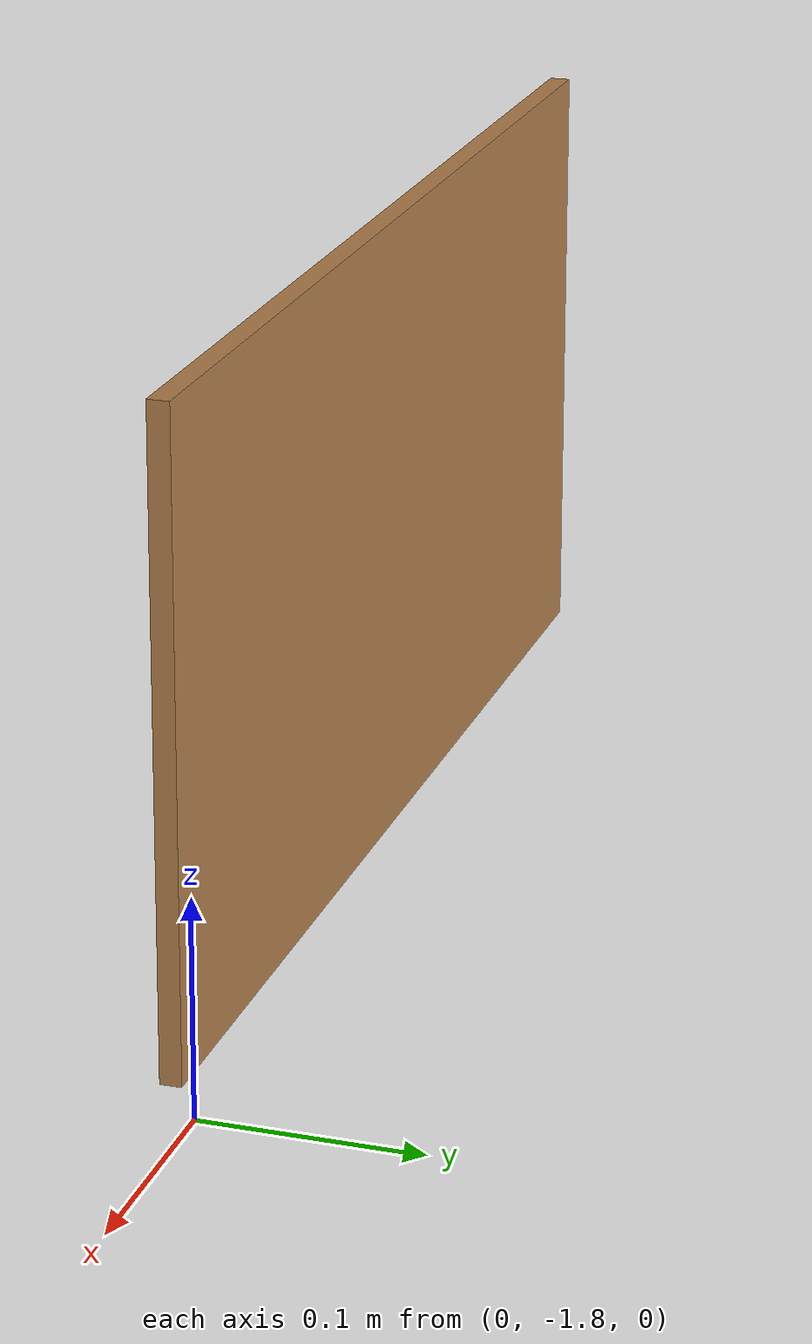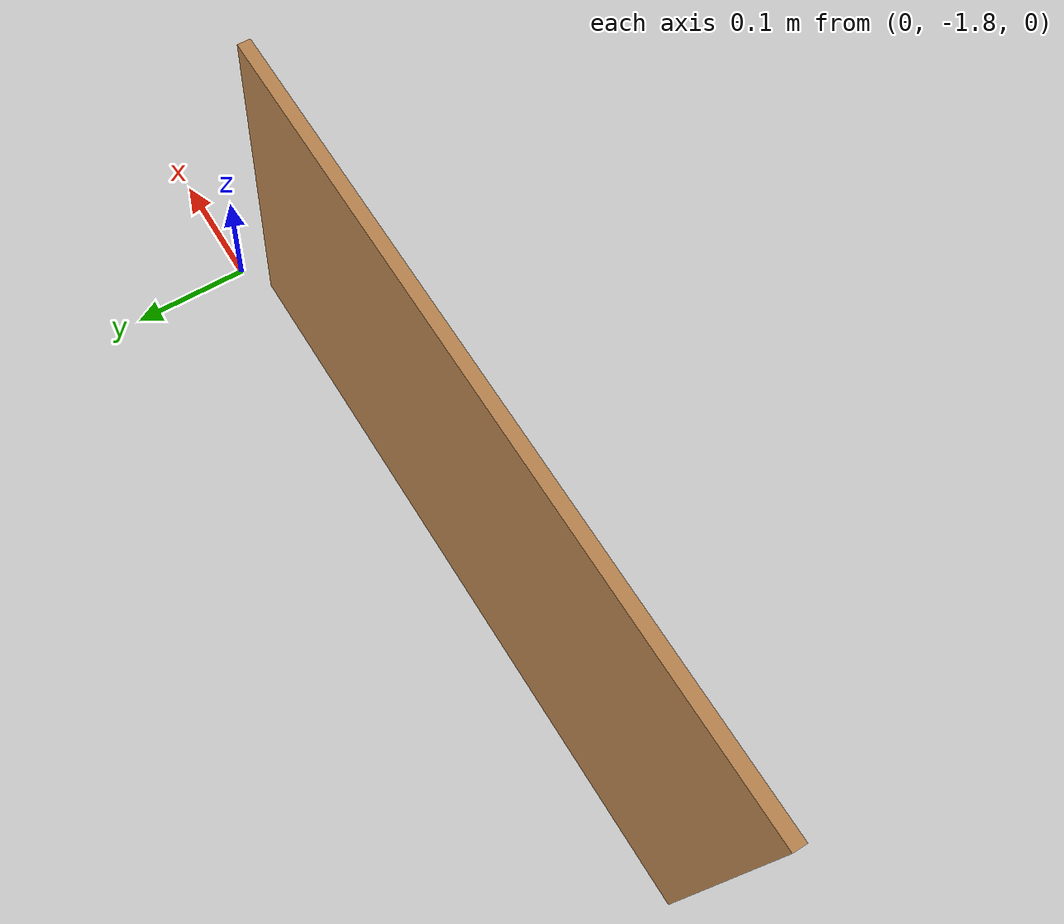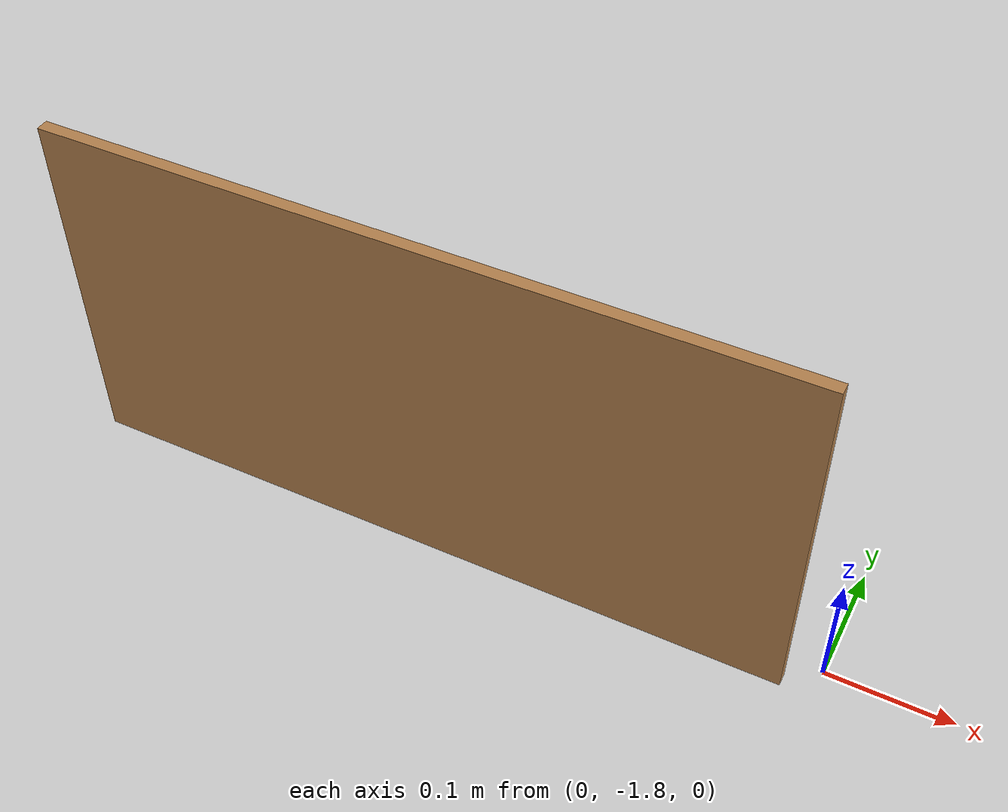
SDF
<?xml version='1.0'?>
<sdf version='1.7'>
  <model name='Wall_60'>
    <pose>-0.3125 -0.9125 0 0 -0 0</pose>
    <link name='Wall_0'>
      <collision name='Wall_0_Collision'>
        <geometry>
          <box>
            <size>0.6 0.01 0.3</size>
          </box>
        </geometry>
        <pose>0 0 0.15 0 -0 0</pose>
      </collision>
      <visual name='Wall_0_Visual'>
        <pose>0 0 0.15 0 -0 0</pose>
        <geometry>
          <box>
            <size>0.6 0.01 0.3</size>
          </box>
        </geometry>
        <material>
          <script>
            <uri>file://media/materials/scripts/gazebo.material</uri>
            <name>Gazebo/Wood</name>
          </script>
          <ambient>1 1 1 1</ambient>
        </material>
        <meta>
          <layer>0</layer>
        </meta>
      </visual>
      <pose>-0.0125 -0.9075 0 0 -0 3.14159</pose>
    </link>
    <static>1</static>
  </model>
</sdf>
